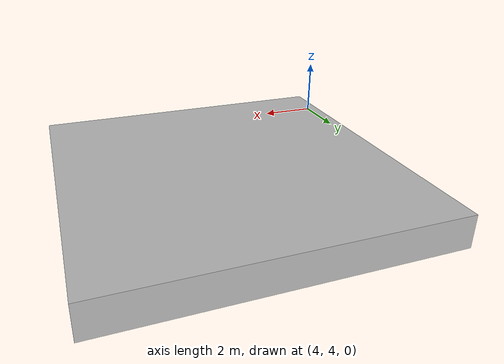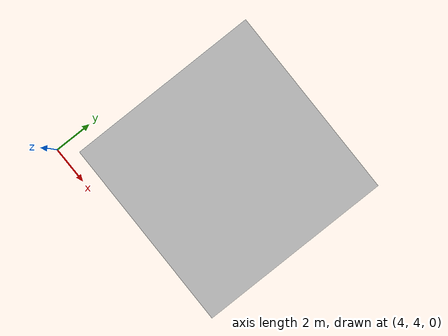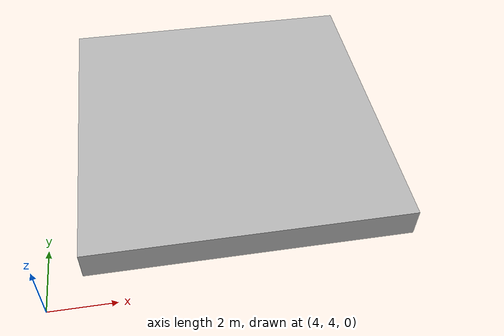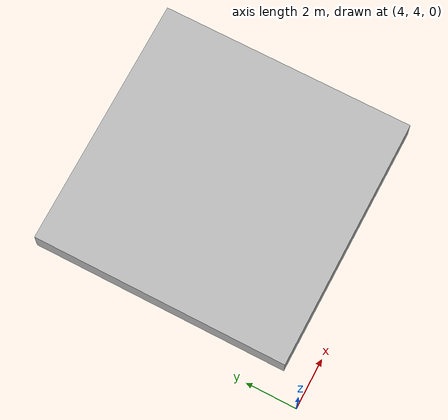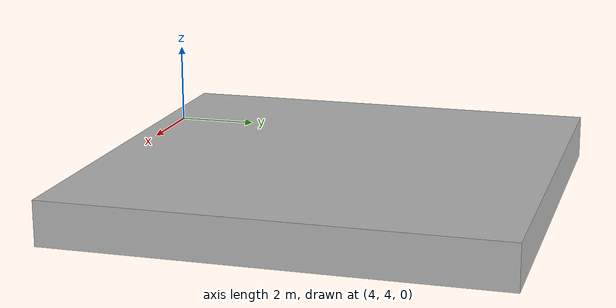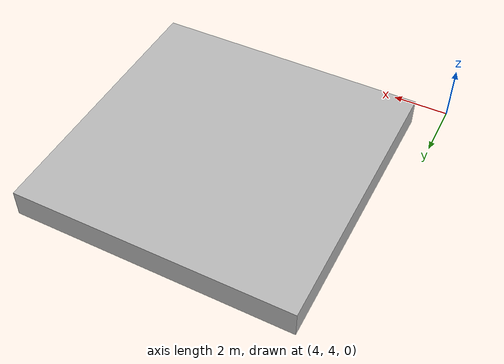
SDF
<?xml version="1.0" ?>
<sdf version="1.5">
  <world name="default">
    <scene>
      <ambient>1 1 1 1</ambient>
      <background>0 0 0 0</background>
      <grid>false</grid>
      <origin_visual>false</origin_visual>
    </scene>
    <gui>
      <camera name="user_camera">
        <pose>0 0 1.2 0 1.5707 0</pose>
      </camera>
    </gui>

    <model name="ground_plane">
      <static>true</static>
      <link name="link">
        <collision name="collision">
          <geometry>
            <plane>
              <normal>0 0 1</normal>
              <size>10 10</size>
            </plane>
          </geometry>
        </collision>
      </link>
    </model>

    <model name="box">
      <pose>10 10 0.5 0 0 0</pose>
      <link name="link">
        <collision name="collision">
          <geometry>
            <box>
              <size>10 10 1</size>
            </box>
          </geometry>
        </collision>
        <visual name="visual">
          <geometry>
            <box>
              <size>10 10 1</size>
            </box>
          </geometry>
          <material>
            <script>Gazebo/White</script>
          </material>
        </visual>
      </link>
    </model>

    <plugin filename="libTransporterPlugin.so" name="transporter">
      <activation_topic>~/transporter</activation_topic>

      <pad name="pad1">
        <destination>pad2</destination>
        <activation>auto</activation>

        <outgoing>
          <min>100 -0.5 0</min>
          <max>101  0.5 1</max>
        </outgoing>

        <incoming>
          <pose>0 0 0.5 0 0 0</pose>
        </incoming>
      </pad>

      <pad name="pad2">
        <destination>pad1</destination>
        <activation>manual</activation>

        <outgoing>
          <min>-101 -0.5 0</min>
          <max>-100  0.5 1</max>
        </outgoing>

        <incoming>
          <pose>0 0 0.5 0 0 0</pose>
        </incoming>
      </pad>
    </plugin>

  </world>
</sdf>
